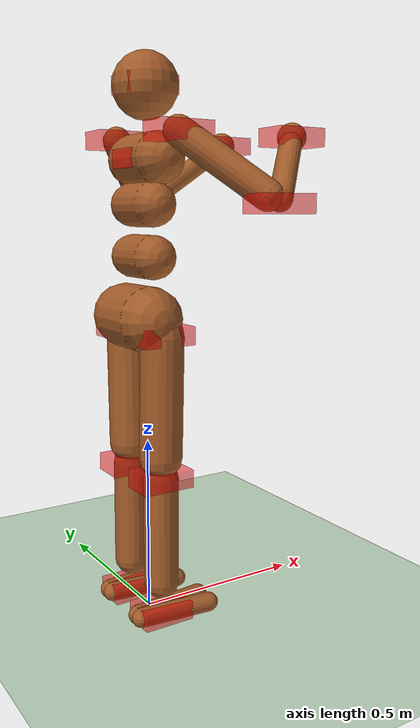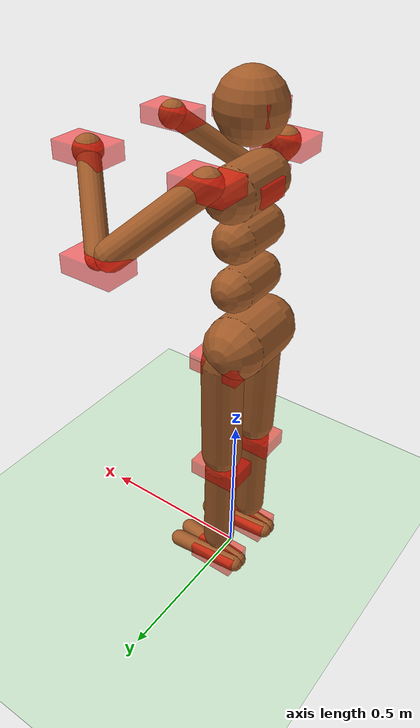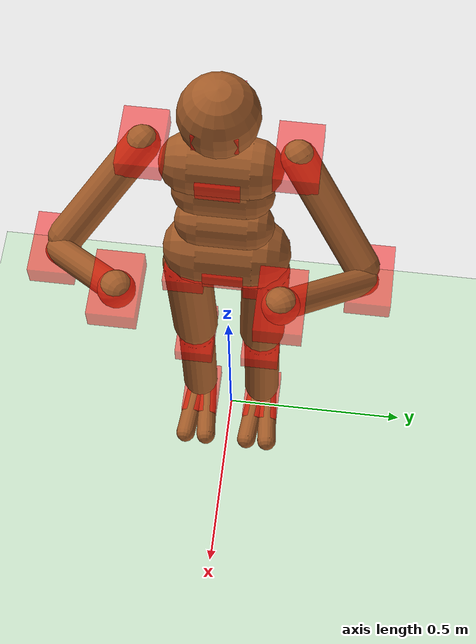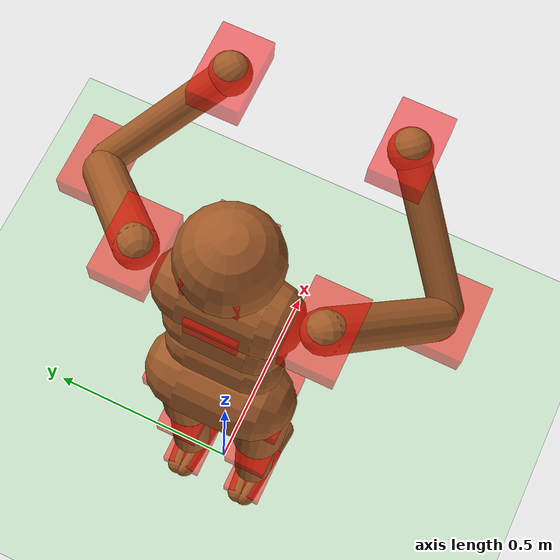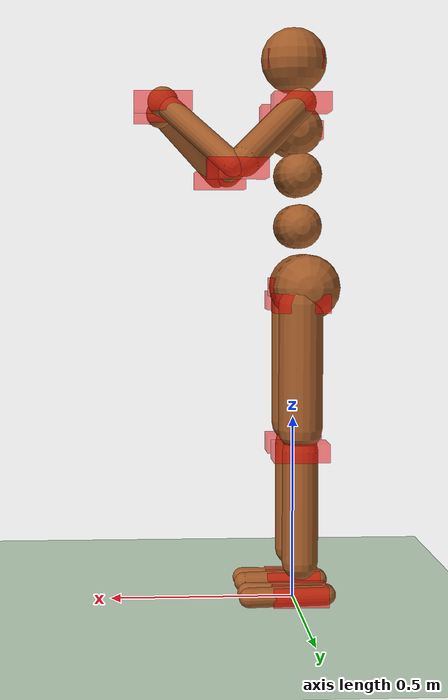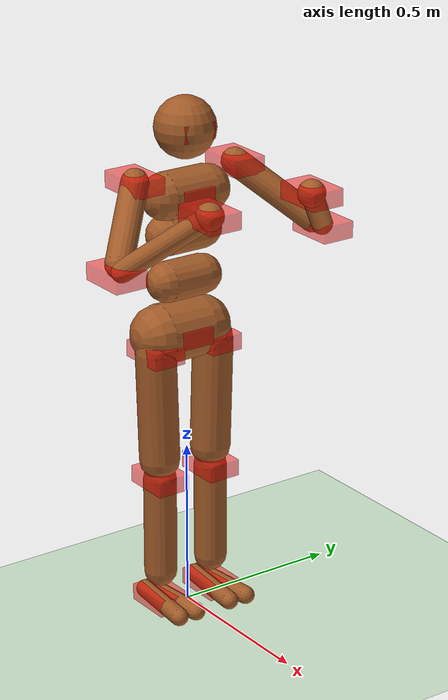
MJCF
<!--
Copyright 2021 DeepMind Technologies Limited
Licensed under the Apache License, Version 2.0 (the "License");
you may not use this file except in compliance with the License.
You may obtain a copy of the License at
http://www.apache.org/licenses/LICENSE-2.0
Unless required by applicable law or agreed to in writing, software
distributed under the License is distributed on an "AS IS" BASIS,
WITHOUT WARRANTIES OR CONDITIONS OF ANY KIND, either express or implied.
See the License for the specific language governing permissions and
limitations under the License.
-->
<mujoco model="Humanoid">
  <include file="../common/scene.xml"/>
  <include file="../common/mimic_sites.xml"/>
  <option timestep="0.005"/>

  <visual>
    <map force="0.1" zfar="30"/>
    <rgba haze="0.15 0.25 0.35 1"/>
    <global offwidth="2560" offheight="1440" elevation="-20" azimuth="120"/>
  </visual>

  <statistic center="0 0 0.7"/>

  <asset>
    <texture type="skybox" builtin="gradient" rgb1=".3 .5 .7" rgb2="0 0 0" width="32" height="512"/>
    <texture name="body" type="cube" builtin="flat" mark="cross" width="128" height="128" rgb1="0.8 0.6 0.4" rgb2="0.8 0.6 0.4" markrgb="1 1 1"/>
    <material name="body" texture="body" texuniform="true" rgba="0.8 0.6 .4 1"/>
    <texture name="grid" type="2d" builtin="checker" width="512" height="512" rgb1=".1 .2 .3" rgb2=".2 .3 .4"/>
    <material name="grid" texture="grid" texrepeat="1 1" texuniform="true" reflectance=".2"/>
  </asset>

  <default>
    <motor ctrlrange="-1 1" ctrllimited="true"/>
    <default class="body">

      <!-- geoms -->
      <geom type="capsule" condim="1" friction=".7" solimp=".9 .99 .003" solref=".015 1" material="body" group="1"/>
      <default class="thigh">
        <geom size=".06"/>
      </default>
      <default class="shin">
        <geom fromto="0 0 0 0 0 -.3"  size=".049"/>
      </default>
      <default class="foot">
        <geom size=".027"/>
        <default class="foot1">
          <geom fromto="-.07 -.01 0 .14 -.03 0"/>
        </default>
        <default class="foot2">
          <geom fromto="-.07 .01 0 .14  .03 0"/>
        </default>
      </default>
      <default class="arm_upper">
        <geom size=".04"/>
      </default>
      <default class="arm_lower">
        <geom size=".031"/>
      </default>
      <default class="hand">
        <geom type="sphere" size=".04"/>
      </default>

      <!-- joints -->
      <joint type="hinge" damping=".2" stiffness="1" armature=".01" limited="true" solimplimit="0 .99 .01"/>
      <default class="joint_big">
        <joint damping="5" stiffness="10"/>
        <default class="hip_x">
          <joint range="-30 10"/>
        </default>
        <default class="hip_z">
          <joint range="-60 35"/>
        </default>
        <default class="hip_y">
          <joint axis="0 1 0" range="-150 20"/>
        </default>
        <default class="joint_big_stiff">
          <joint stiffness="20"/>
        </default>
      </default>
      <default class="knee">
        <joint pos="0 0 .02" axis="0 -1 0" range="-160 2"/>
      </default>
      <default class="ankle">
        <joint range="-50 50"/>
        <default class="ankle_y">
          <joint pos="0 0 .08" axis="0 1 0" stiffness="6"/>
        </default>
        <default class="ankle_x">
          <joint pos="0 0 .04" stiffness="3"/>
        </default>
      </default>
      <default class="shoulder">
        <joint range="-85 60"/>
      </default>
      <default class="elbow">
        <joint range="-100 50" stiffness="0"/>
      </default>
    </default>
  </default>

  <worldbody>
    <light name="spotlight" mode="targetbodycom" target="torso" diffuse=".8 .8 .8" specular="0.3 0.3 0.3" pos="0 -6 4" cutoff="30"/>
    <light name="top" pos="0 0 2" mode="trackcom"/>
    <body name="torso" pos="0 0 1.282" childclass="body">
        <site name="upper_body_mimic" class="mimic"/>
      <camera name="back" pos="-3 0 1" xyaxes="0 -1 0 1 0 2" mode="trackcom"/>
      <camera name="side" pos="0 -3 1" xyaxes="1 0 0 0 1 2" mode="trackcom"/>
      <freejoint name="root"/>
      <geom name="torso" fromto="0 -.07 0 0 .07 0" size=".07"/>
      <geom name="waist_upper" fromto="-.01 -.06 -.12 -.01 .06 -.12" size=".06"/>
      <body name="head" pos="0 0 .19">
        <site name="head_mimic" class="mimic"/>
        <geom name="head" type="sphere" size=".09"/>
        <camera name="egocentric" pos=".09 0 0" xyaxes="0 -1 0 .1 0 1" fovy="80"/>
      </body>
      <body name="waist_lower" pos="-.01 0 -.26">
        <geom name="waist_lower" fromto="0 -.06 0 0 .06 0" size=".06"/>
        <joint name="abdomen_z" pos="0 0 .065" axis="0 0 1" range="-45 45" class="joint_big_stiff"/>
        <joint name="abdomen_y" pos="0 0 .065" axis="0 1 0" range="-75 30" class="joint_big"/>
        <body name="pelvis" pos="0 0 -.165">
            <site name="pelvis_mimic" class="mimic"/>
          <joint name="abdomen_x" pos="0 0 .1" axis="1 0 0" range="-35 35" class="joint_big"/>
          <geom name="butt" fromto="-.02 -.07 0 -.02 .07 0" size=".09"/>
          <body name="thigh_right" pos="0 -.1 -.04">
            <site name="right_hip_mimic" class="mimic"/>
            <joint name="hip_x_right" axis="1 0 0" class="hip_x"/>
            <joint name="hip_z_right" axis="0 0 1" class="hip_z"/>
            <joint name="hip_y_right" class="hip_y"/>
            <geom name="thigh_right" fromto="0 0 0 0 .01 -.34" class="thigh"/>
            <body name="shin_right" pos="0 .01 -.4">
                <site name="right_knee_mimic" class="mimic"/>
              <joint name="knee_right" class="knee"/>
              <geom name="shin_right" class="shin"/>
              <body name="foot_right" pos="0 0 -.39">
                <site name="right_foot_mimic" class="mimic"/>
                <joint name="ankle_y_right" class="ankle_y"/>
                <joint name="ankle_x_right" class="ankle_x" axis="1 0 .5"/>
                <geom name="foot1_right" class="foot1"/>
                <geom name="foot2_right" class="foot2"/>
              </body>
            </body>
          </body>
          <body name="thigh_left" pos="0 .1 -.04">
            <site name="left_hip_mimic" class="mimic"/>
            <joint name="hip_x_left" axis="-1 0 0" class="hip_x"/>
            <joint name="hip_z_left" axis="0 0 -1" class="hip_z"/>
            <joint name="hip_y_left" class="hip_y"/>
            <geom name="thigh_left" fromto="0 0 0 0 -.01 -.34" class="thigh"/>
            <body name="shin_left" pos="0 -.01 -.4">
            <site name="left_knee_mimic" class="mimic"/>
              <joint name="knee_left" class="knee"/>
              <geom name="shin_left" fromto="0 0 0 0 0 -.3" class="shin"/>
              <body name="foot_left" pos="0 0 -.39">
                <site name="left_foot_mimic" class="mimic"/>
                <joint name="ankle_y_left" class="ankle_y"/>
                <joint name="ankle_x_left" class="ankle_x" axis="-1 0 -.5"/>
                <geom name="foot1_left" class="foot1"/>
                <geom name="foot2_left" class="foot2"/>
              </body>
            </body>
          </body>
        </body>
      </body>
      <body name="upper_arm_right" pos="0 -.17 .06">
        <site name="right_shoulder_mimic" class="mimic"/>
        <joint name="shoulder1_right" axis="2 1 1"  class="shoulder"/>
        <joint name="shoulder2_right" axis="0 -1 1" class="shoulder"/>
        <geom name="upper_arm_right" fromto="0 0 0 .16 -.16 -.16" class="arm_upper"/>
        <body name="lower_arm_right" pos=".18 -.18 -.18">
          <site name="right_elbow_mimic" class="mimic"/>
          <joint name="elbow1_right" axis="0 -1 1" class="elbow"/>
          <joint name="elbow2_right" axis="1 0 0" class="elbow"/>
          <geom name="lower_arm_right" fromto=".01 .01 .01 .17 .17 .17" class="arm_lower"/>
          <body name="hand_right" pos=".18 .18 .18">
            <site name="right_hand_mimic" class="mimic"/>
            <geom name="hand_right" zaxis="1 1 1" class="hand"/>
          </body>
        </body>
      </body>
      <body name="upper_arm_left" pos="0 .17 .06">
        <site name="left_shoulder_mimic" class="mimic"/>
        <joint name="shoulder1_left" axis="-2 1 -1" class="shoulder"/>
        <joint name="shoulder2_left" axis="0 -1 -1"  class="shoulder"/>
        <geom name="upper_arm_left" fromto="0 0 0 .16 .16 -.16" class="arm_upper"/>
        <body name="lower_arm_left" pos=".18 .18 -.18">
          <site name="left_elbow_mimic" class="mimic"/>
          <joint name="elbow1_left" axis="0 -1 -1" class="elbow"/>
          <joint name="elbow2_left" axis="-1 0 0" class="elbow"/>
          <geom name="lower_arm_left" fromto=".01 -.01 .01 .17 -.17 .17" class="arm_lower"/>
          <body name="hand_left" pos=".18 -.18 .18">
            <site name="left_hand_mimic" class="mimic"/>
            <geom name="hand_left" zaxis="1 -1 1" class="hand"/>
          </body>
        </body>
      </body>
    </body>
  </worldbody>

  <contact>
    <exclude body1="waist_lower" body2="thigh_right"/>
    <exclude body1="waist_lower" body2="thigh_left"/>
  </contact>

  <tendon>
    <fixed name="hamstring_right" limited="true" range="-0.3 2">
      <joint joint="hip_y_right" coef=".5"/>
      <joint joint="knee_right" coef="-.5"/>
    </fixed>
    <fixed name="hamstring_left" limited="true" range="-0.3 2">
      <joint joint="hip_y_left" coef=".5"/>
      <joint joint="knee_left" coef="-.5"/>
    </fixed>
  </tendon>

  <actuator>
    <motor name="abdomen_z"       gear="40"  joint="abdomen_z"/>
    <motor name="abdomen_y"       gear="40"  joint="abdomen_y"/>
    <motor name="abdomen_x"       gear="40"  joint="abdomen_x"/>
    <motor name="hip_x_right"     gear="40"  joint="hip_x_right"/>
    <motor name="hip_z_right"     gear="40"  joint="hip_z_right"/>
    <motor name="hip_y_right"     gear="120" joint="hip_y_right"/>
    <motor name="knee_right"      gear="80"  joint="knee_right"/>
    <motor name="ankle_y_right"   gear="20"  joint="ankle_y_right"/>
    <motor name="ankle_x_right"   gear="20"  joint="ankle_x_right"/>
    <motor name="hip_x_left"      gear="40"  joint="hip_x_left"/>
    <motor name="hip_z_left"      gear="40"  joint="hip_z_left"/>
    <motor name="hip_y_left"      gear="120" joint="hip_y_left"/>
    <motor name="knee_left"       gear="80"  joint="knee_left"/>
    <motor name="ankle_y_left"    gear="20"  joint="ankle_y_left"/>
    <motor name="ankle_x_left"    gear="20"  joint="ankle_x_left"/>
    <motor name="shoulder1_right" gear="20"  joint="shoulder1_right"/>
    <motor name="shoulder2_right" gear="20"  joint="shoulder2_right"/>
    <motor name="elbow1_right"     gear="40"  joint="elbow1_right"/>
    <motor name="elbow2_right"     gear="40"  joint="elbow2_right"/>
    <motor name="shoulder1_left"  gear="20"  joint="shoulder1_left"/>
    <motor name="shoulder2_left"  gear="20"  joint="shoulder2_left"/>
    <motor name="elbow1_left"      gear="40"  joint="elbow1_left"/>
    <motor name="elbow2_left"      gear="40"  joint="elbow2_left"/>
  </actuator>
</mujoco>

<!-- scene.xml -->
git s<mujoco model="scene">

  <visual>
    <headlight diffuse="0.6 0.6 0.6" ambient="0.3 0.3 0.3" specular="0 0 0"/>
    <rgba haze="0.15 0.25 0.35 1"/>
    <global azimuth="-130" elevation="-20"/>
  </visual>

   <asset>
       <texture builtin="gradient" height="100" rgb1=".4 .5 .6" rgb2="0 0 0" type="skybox" width="100"/>
       <texture name="texplane" type="2d" builtin="checker" rgb1=".2 .3 .4" rgb2=".1 0.15 0.2" width="100" height="100"/>
       <material name="MatPlane" reflectance="0.5" texture="texplane" texrepeat="1 1" texuniform="true"/>
   </asset>

    <worldbody>
        <geom name="floor" friction="1 .1 .1" pos="0 0 0" size="0 0 0.125" type="plane" material="MatPlane" condim="3" conaffinity="1" contype="1" group="2" rgba="0.8 0.9 0.8 1"/>
        <light cutoff="1000" diffuse="1 1 1" dir="-0 0 -1.3" directional="true" exponent="1" pos="0 0 1.3" specular=".1 .1 .1" castshadow="false"/>
    </worldbody>
</mujoco>

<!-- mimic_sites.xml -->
<mujoco model="mimic_sites">
    <default>
    <default class="mimic">
        <site group="1" type="box" size="0.075 0.05 0.025" rgba="1.0 0.0 0.0 0.5"/>
    </default>
    </default>
</mujoco>
